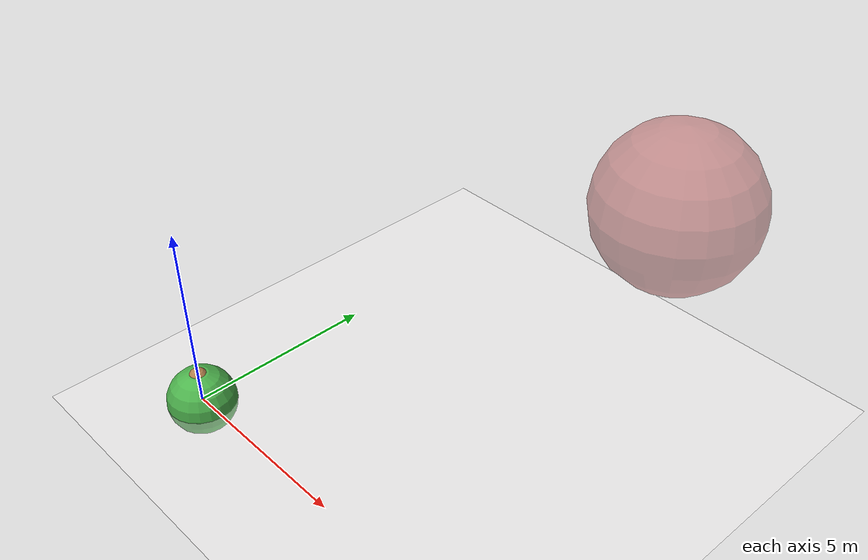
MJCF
<mujoco model="ant">
  <compiler angle="degree" coordinate="local" inertiafromgeom="true"/>
  <option timestep="0.01" iterations="4" />
  <custom>
    <!-- brax custom params -->
    <numeric data="1000" name="constraint_limit_stiffness"/>
    <numeric data="4000" name="constraint_stiffness"/>
    <numeric data="10" name="constraint_ang_damping"/>
    <numeric data="20" name="constraint_vel_damping"/>
    <numeric data="0.5" name="joint_scale_pos"/>
    <numeric data="0.2" name="joint_scale_ang"/>
    <numeric data="0.0" name="ang_damping"/>
    <numeric data="1" name="spring_mass_scale"/>
    <numeric data="1" name="spring_inertia_scale"/>
    <numeric data="15" name="solver_maxls"/>
  </custom>
  <default>
    <joint armature="1" damping="1" limited="true"/>
    <geom contype="0" conaffinity="0" condim="3" density="5.0" friction="1 0.5 0.5"/>

    <default class="cf2">
      <default class="visual">
        <geom group="2" type="mesh" contype="0" conaffinity="0"/>
      </default>
      <default class="collision">
        <geom group="3" type="mesh"/>
      </default>
      <site group="5"/>
    </default>
  </default>
  <asset>
    <material name="polished_plastic" rgba="0.631 0.659 0.678 1"/>
    <material name="polished_gold" rgba="0.969 0.878 0.6 1"/>
    <material name="medium_gloss_plastic" rgba="0.109 0.184 0.0 1"/>
    <material name="propeller_plastic" rgba="0.792 0.820 0.933 1"/>
    <material name="white" rgba="1 1 1 1"/>
    <material name="body_frame_plastic" rgba="0.102 0.102 0.102 1"/>
    <material name="burnished_chrome" rgba="0.898 0.898 0.898 1"/>

    <texture builtin="gradient" height="100" rgb1="1 1 1" rgb2="1 1 1" type="skybox" width="100"/>
    <texture builtin="flat" height="1278" mark="cross" markrgb="1 1 1" name="texgeom" random="0.01" rgb1="0.8 0.6 0.4" rgb2="0.8 0.6 0.4" type="cube" width="127"/>
    <texture builtin="checker" height="100" name="texplane" rgb1="0.8 0.8 0.8" rgb2="0.8 0.8 0.8" type="2d" width="100"/>
    <material name="MatPlane" reflectance="0.0" shininess="1" specular="1" texrepeat="60 60" texture="texplane"/>
    <material name="geom" texture="texgeom" texuniform="true"/>
  </asset>

  <worldbody>
    <light cutoff="100" diffuse="1 1 1" dir="-0 0 -1.3" directional="true" exponent="1" pos="0 0 1.3" specular=".1 .1 .1"/>
    <geom conaffinity="1" condim="3" material="MatPlane" rgba="1.0 1.0 1.0 1.0" name="floor" pos="0 0 0" size="100 100 40" type="plane"/>
    <light cutoff="100" diffuse="1 1 1" dir="0 1.3 0" directional="true" exponent="1" pos="8 -5.5 8" specular=".1 .1 .1"/>
    <camera name="overview" pos="8 -5.5 8" xyaxes="1 0 0 0 0 1" fovy="110"/>

    <body name="torso" pos="0 0 0.75" gravcomp="1">
      <geom name="torso_geom" pos="0 0 0" rgba="0.7 0.5 0.3 1.0" size="0.25" type="sphere" conaffinity="1" contype="1"/>
      <joint name="obj_slidex" type="slide" pos="0 0 0" axis="1 0 0" range="-100 100" damping="0.0"/>
      <joint name="obj_slidey" type="slide" pos="0 0 0" axis="0 1 0" range="-100 100" damping="0.0"/>
      <joint name="obj_slidez" type="slide" pos="0 0 0" axis="0 0 1" range="-100 100" damping="0.0"/>
    </body>

    <body name="center_obstacle">
        <geom conaffinity="0" contype="0" pos="8 8 6" size="2.0" rgba="0.7 0.3 0.3 0.5" type="sphere"/>
    </body>

    <body name="target" pos="0 0 0.01" gravcomp="1">
        <joint armature="0" axis="1 0 0" damping="0" limited="true" name="target_x" pos="0 0 0" range="-100 100" stiffness="0" type="slide"/>
        <joint armature="0" axis="0 1 0" damping="0" limited="true" name="target_y" pos="0 0 0" range="-100 100" stiffness="0" type="slide"/>
        <joint armature="0" axis="0 0 1" damping="0" limited="true" name="target_z" pos="0 0 0" range="-100 100" stiffness="0" type="slide"/>
        <geom conaffinity="0" contype="0" name="target" pos="0 0 0" rgba="0.3 0.7 0.3 1.0" size=".9" type="sphere"  mass="1.0"/>
    </body>
  </worldbody>

  <actuator>
    <motor name="move_x" joint="obj_slidex" gear="5 0 0"/>
    <motor name="move_y" joint="obj_slidey" gear="5 0 0"/>
    <motor name="move_z" joint="obj_slidez" gear="5 0 0"/>
  </actuator>
</mujoco>
